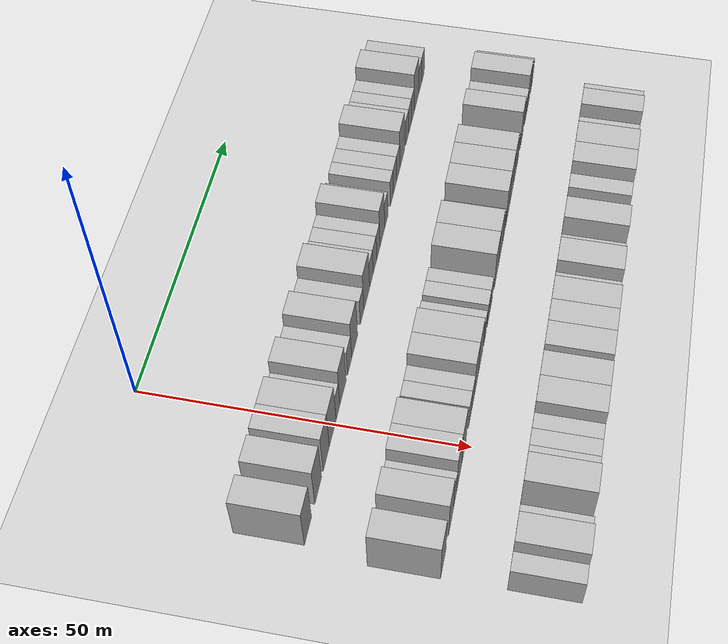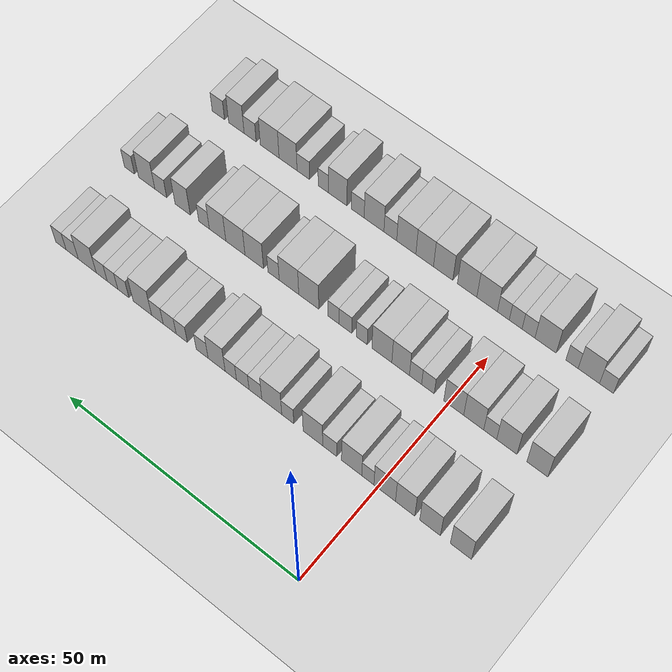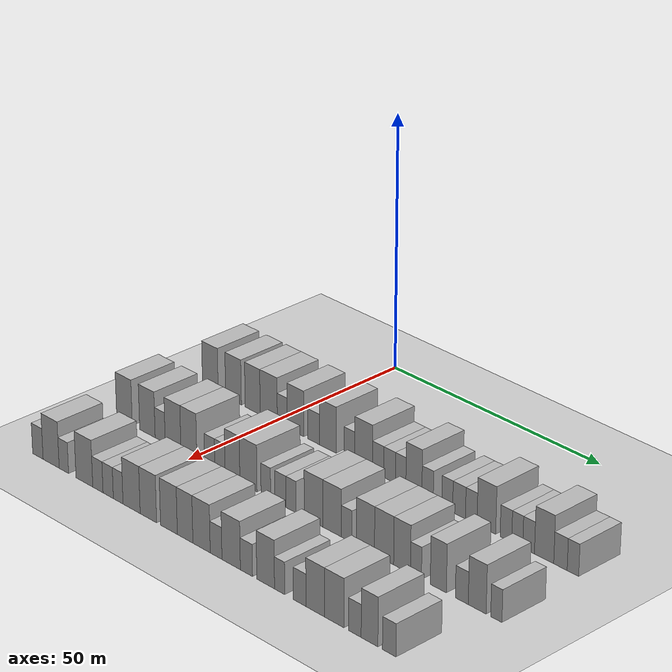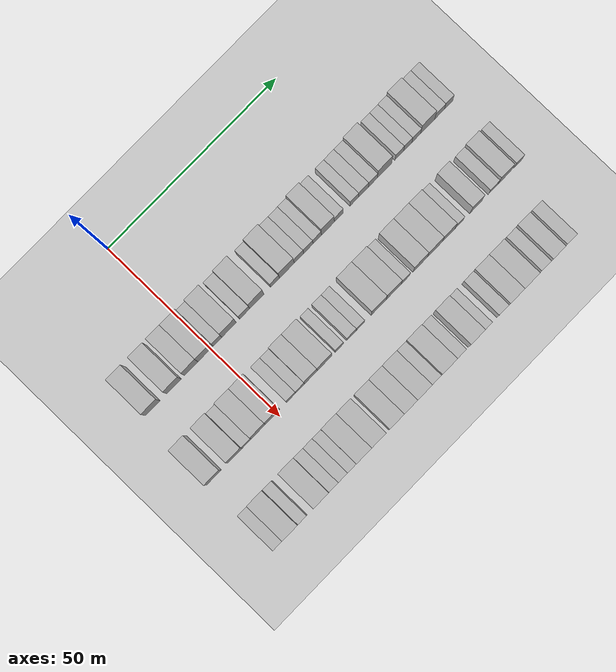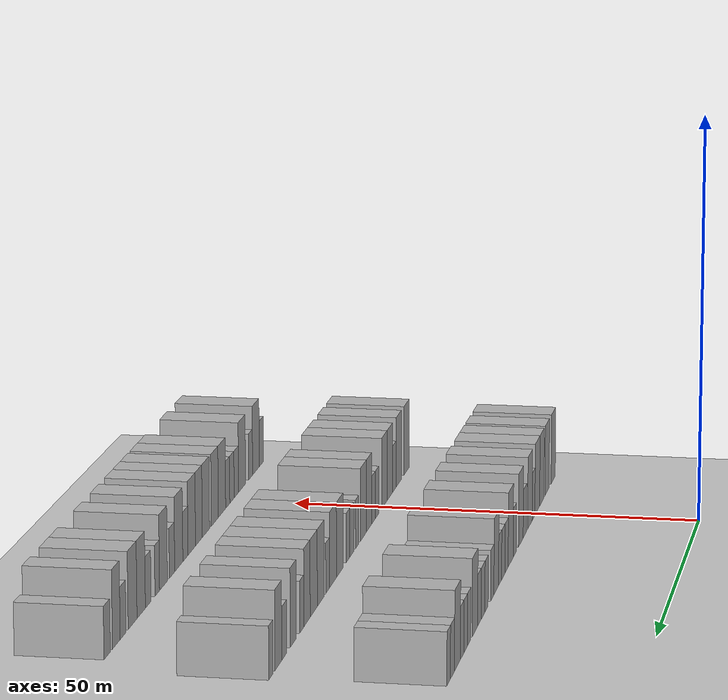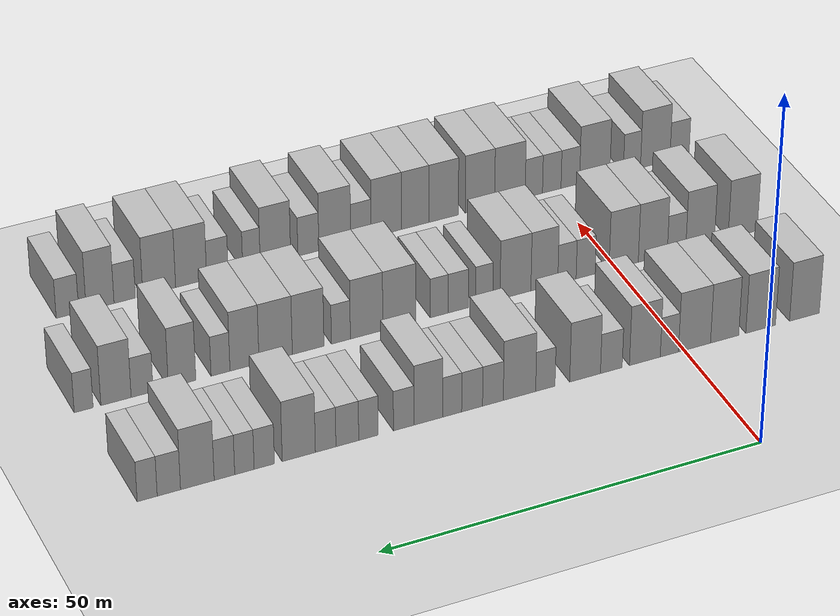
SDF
<sdf version="1.6">
 <world name="default">
  <include><name>ground_plane_1</name><uri>model://HANNAS_ground_plane</uri></include>
  <model name="building_85">
   <static>1</static>
   <pose>25.0000 -16.9718 0 0.000000 0.000000 0.000000</pose>
   <link name="link">
    <pose>0 0 4.50 0 0 0</pose>
    <collision name="collision"><geometry><box><size>10.0000 4.2459 9.0000</size></box></geometry></collision>
    <visual name="visual">
     <cast_shadows>0</cast_shadows>
     <geometry><box><size>10.0000 4.2459 9.0000</size></box></geometry>
     <material>
      <script>
       <uri>model://HANNAS_wall/materials/scripts</uri>
       <uri>model://HANNAS_wall/materials/textures</uri>
       <name>vrc/HANNAS_wall</name>
      </script>
     </material>
    </visual>
   </link>
  </model>
  <model name="building_86">
   <static>1</static>
   <pose>25.0000 -10.7475 0 0.000000 0.000000 0.000000</pose>
   <link name="link">
    <pose>0 0 4.50 0 0 0</pose>
    <collision name="collision"><geometry><box><size>10.0000 4.2026 9.0000</size></box></geometry></collision>
    <visual name="visual">
     <cast_shadows>0</cast_shadows>
     <geometry><box><size>10.0000 4.2026 9.0000</size></box></geometry>
     <material>
      <script>
       <uri>model://HANNAS_wall/materials/scripts</uri>
       <uri>model://HANNAS_wall/materials/textures</uri>
       <name>vrc/HANNAS_wall</name>
      </script>
     </material>
    </visual>
   </link>
  </model>
  <model name="building_87">
   <static>1</static>
   <pose>25.0000 -5.6650 0 0.000000 0.000000 0.000000</pose>
   <link name="link">
    <pose>0 0 4.50 0 0 0</pose>
    <collision name="collision"><geometry><box><size>10.0000 3.9624 9.0000</size></box></geometry></collision>
    <visual name="visual">
     <cast_shadows>0</cast_shadows>
     <geometry><box><size>10.0000 3.9624 9.0000</size></box></geometry>
     <material>
      <script>
       <uri>model://HANNAS_wall/materials/scripts</uri>
       <uri>model://HANNAS_wall/materials/textures</uri>
       <name>vrc/HANNAS_wall</name>
      </script>
     </material>
    </visual>
   </link>
  </model>
  <model name="building_88">
   <static>1</static>
   <pose>25.0000 -1.4471 0 0.000000 0.000000 0.000000</pose>
   <link name="link">
    <pose>0 0 4.50 0 0 0</pose>
    <collision name="collision"><geometry><box><size>10.0000 4.4735 9.0000</size></box></geometry></collision>
    <visual name="visual">
     <cast_shadows>0</cast_shadows>
     <geometry><box><size>10.0000 4.4735 9.0000</size></box></geometry>
     <material>
      <script>
       <uri>model://HANNAS_wall/materials/scripts</uri>
       <uri>model://HANNAS_wall/materials/textures</uri>
       <name>vrc/HANNAS_wall</name>
      </script>
     </material>
    </visual>
   </link>
  </model>
  <model name="building_89">
   <static>1</static>
   <pose>25.0000 2.0580 0 0.000000 0.000000 0.000000</pose>
   <link name="link">
    <pose>0 0 3.00 0 0 0</pose>
    <collision name="collision"><geometry><box><size>10.0000 2.5365 6.0000</size></box></geometry></collision>
    <visual name="visual">
     <cast_shadows>0</cast_shadows>
     <geometry><box><size>10.0000 2.5365 6.0000</size></box></geometry>
     <material>
      <script>
       <uri>model://HANNAS_wall/materials/scripts</uri>
       <uri>model://HANNAS_wall/materials/textures</uri>
       <name>vrc/HANNAS_wall</name>
      </script>
     </material>
    </visual>
   </link>
  </model>
  <model name="building_90">
   <static>1</static>
   <pose>25.0000 5.4576 0 0.000000 0.000000 0.000000</pose>
   <link name="link">
    <pose>0 0 4.50 0 0 0</pose>
    <collision name="collision"><geometry><box><size>10.0000 4.2628 9.0000</size></box></geometry></collision>
    <visual name="visual">
     <cast_shadows>0</cast_shadows>
     <geometry><box><size>10.0000 4.2628 9.0000</size></box></geometry>
     <material>
      <script>
       <uri>model://HANNAS_wall/materials/scripts</uri>
       <uri>model://HANNAS_wall/materials/textures</uri>
       <name>vrc/HANNAS_wall</name>
      </script>
     </material>
    </visual>
   </link>
  </model>
  <model name="building_91">
   <static>1</static>
   <pose>25.0000 10.0822 0 0.000000 0.000000 0.000000</pose>
   <link name="link">
    <pose>0 0 3.00 0 0 0</pose>
    <collision name="collision"><geometry><box><size>10.0000 2.9864 6.0000</size></box></geometry></collision>
    <visual name="visual">
     <cast_shadows>0</cast_shadows>
     <geometry><box><size>10.0000 2.9864 6.0000</size></box></geometry>
     <material>
      <script>
       <uri>model://HANNAS_wall/materials/scripts</uri>
       <uri>model://HANNAS_wall/materials/textures</uri>
       <name>vrc/HANNAS_wall</name>
      </script>
     </material>
    </visual>
   </link>
  </model>
  <model name="building_92">
   <static>1</static>
   <pose>25.0000 13.6766 0 0.000000 0.000000 0.000000</pose>
   <link name="link">
    <pose>0 0 4.50 0 0 0</pose>
    <collision name="collision"><geometry><box><size>10.0000 4.2022 9.0000</size></box></geometry></collision>
    <visual name="visual">
     <cast_shadows>0</cast_shadows>
     <geometry><box><size>10.0000 4.2022 9.0000</size></box></geometry>
     <material>
      <script>
       <uri>model://HANNAS_wall/materials/scripts</uri>
       <uri>model://HANNAS_wall/materials/textures</uri>
       <name>vrc/HANNAS_wall</name>
      </script>
     </material>
    </visual>
   </link>
  </model>
  <model name="building_93">
   <static>1</static>
   <pose>25.0000 19.0886 0 0.000000 0.000000 0.000000</pose>
   <link name="link">
    <pose>0 0 3.00 0 0 0</pose>
    <collision name="collision"><geometry><box><size>10.0000 2.6219 6.0000</size></box></geometry></collision>
    <visual name="visual">
     <cast_shadows>0</cast_shadows>
     <geometry><box><size>10.0000 2.6219 6.0000</size></box></geometry>
     <material>
      <script>
       <uri>model://HANNAS_wall/materials/scripts</uri>
       <uri>model://HANNAS_wall/materials/textures</uri>
       <name>vrc/HANNAS_wall</name>
      </script>
     </material>
    </visual>
   </link>
  </model>
  <model name="building_94">
   <static>1</static>
   <pose>25.0000 22.5845 0 0.000000 0.000000 0.000000</pose>
   <link name="link">
    <pose>0 0 4.50 0 0 0</pose>
    <collision name="collision"><geometry><box><size>10.0000 4.3699 9.0000</size></box></geometry></collision>
    <visual name="visual">
     <cast_shadows>0</cast_shadows>
     <geometry><box><size>10.0000 4.3699 9.0000</size></box></geometry>
     <material>
      <script>
       <uri>model://HANNAS_wall/materials/scripts</uri>
       <uri>model://HANNAS_wall/materials/textures</uri>
       <name>vrc/HANNAS_wall</name>
      </script>
     </material>
    </visual>
   </link>
  </model>
  <model name="building_95">
   <static>1</static>
   <pose>25.0000 26.1605 0 0.000000 0.000000 0.000000</pose>
   <link name="link">
    <pose>0 0 3.00 0 0 0</pose>
    <collision name="collision"><geometry><box><size>10.0000 2.7820 6.0000</size></box></geometry></collision>
    <visual name="visual">
     <cast_shadows>0</cast_shadows>
     <geometry><box><size>10.0000 2.7820 6.0000</size></box></geometry>
     <material>
      <script>
       <uri>model://HANNAS_wall/materials/scripts</uri>
       <uri>model://HANNAS_wall/materials/textures</uri>
       <name>vrc/HANNAS_wall</name>
      </script>
     </material>
    </visual>
   </link>
  </model>
  <model name="building_96">
   <static>1</static>
   <pose>25.0000 28.9496 0 0.000000 0.000000 0.000000</pose>
   <link name="link">
    <pose>0 0 3.00 0 0 0</pose>
    <collision name="collision"><geometry><box><size>10.0000 2.7963 6.0000</size></box></geometry></collision>
    <visual name="visual">
     <cast_shadows>0</cast_shadows>
     <geometry><box><size>10.0000 2.7963 6.0000</size></box></geometry>
     <material>
      <script>
       <uri>model://HANNAS_wall/materials/scripts</uri>
       <uri>model://HANNAS_wall/materials/textures</uri>
       <name>vrc/HANNAS_wall</name>
      </script>
     </material>
    </visual>
   </link>
  </model>
  <model name="building_97">
   <static>1</static>
   <pose>25.0000 31.6066 0 0.000000 0.000000 0.000000</pose>
   <link name="link">
    <pose>0 0 3.00 0 0 0</pose>
    <collision name="collision"><geometry><box><size>10.0000 2.5177 6.0000</size></box></geometry></collision>
    <visual name="visual">
     <cast_shadows>0</cast_shadows>
     <geometry><box><size>10.0000 2.5177 6.0000</size></box></geometry>
     <material>
      <script>
       <uri>model://HANNAS_wall/materials/scripts</uri>
       <uri>model://HANNAS_wall/materials/textures</uri>
       <name>vrc/HANNAS_wall</name>
      </script>
     </material>
    </visual>
   </link>
  </model>
  <model name="building_98">
   <static>1</static>
   <pose>25.0000 34.7796 0 0.000000 0.000000 0.000000</pose>
   <link name="link">
    <pose>0 0 4.50 0 0 0</pose>
    <collision name="collision"><geometry><box><size>10.0000 3.8283 9.0000</size></box></geometry></collision>
    <visual name="visual">
     <cast_shadows>0</cast_shadows>
     <geometry><box><size>10.0000 3.8283 9.0000</size></box></geometry>
     <material>
      <script>
       <uri>model://HANNAS_wall/materials/scripts</uri>
       <uri>model://HANNAS_wall/materials/textures</uri>
       <name>vrc/HANNAS_wall</name>
      </script>
     </material>
    </visual>
   </link>
  </model>
  <model name="building_99">
   <static>1</static>
   <pose>25.0000 38.0408 0 0.000000 0.000000 0.000000</pose>
   <link name="link">
    <pose>0 0 3.00 0 0 0</pose>
    <collision name="collision"><geometry><box><size>10.0000 2.6940 6.0000</size></box></geometry></collision>
    <visual name="visual">
     <cast_shadows>0</cast_shadows>
     <geometry><box><size>10.0000 2.6940 6.0000</size></box></geometry>
     <material>
      <script>
       <uri>model://HANNAS_wall/materials/scripts</uri>
       <uri>model://HANNAS_wall/materials/textures</uri>
       <name>vrc/HANNAS_wall</name>
      </script>
     </material>
    </visual>
   </link>
  </model>
  <model name="building_100">
   <static>1</static>
   <pose>25.0000 42.6638 0 0.000000 0.000000 0.000000</pose>
   <link name="link">
    <pose>0 0 3.00 0 0 0</pose>
    <collision name="collision"><geometry><box><size>10.0000 2.5520 6.0000</size></box></geometry></collision>
    <visual name="visual">
     <cast_shadows>0</cast_shadows>
     <geometry><box><size>10.0000 2.5520 6.0000</size></box></geometry>
     <material>
      <script>
       <uri>model://HANNAS_wall/materials/scripts</uri>
       <uri>model://HANNAS_wall/materials/textures</uri>
       <name>vrc/HANNAS_wall</name>
      </script>
     </material>
    </visual>
   </link>
  </model>
  <model name="building_101">
   <static>1</static>
   <pose>25.0000 45.4271 0 0.000000 0.000000 0.000000</pose>
   <link name="link">
    <pose>0 0 3.00 0 0 0</pose>
    <collision name="collision"><geometry><box><size>10.0000 2.9746 6.0000</size></box></geometry></collision>
    <visual name="visual">
     <cast_shadows>0</cast_shadows>
     <geometry><box><size>10.0000 2.9746 6.0000</size></box></geometry>
     <material>
      <script>
       <uri>model://HANNAS_wall/materials/scripts</uri>
       <uri>model://HANNAS_wall/materials/textures</uri>
       <name>vrc/HANNAS_wall</name>
      </script>
     </material>
    </visual>
   </link>
  </model>
  <model name="building_102">
   <static>1</static>
   <pose>25.0000 48.2496 0 0.000000 0.000000 0.000000</pose>
   <link name="link">
    <pose>0 0 3.00 0 0 0</pose>
    <collision name="collision"><geometry><box><size>10.0000 2.6703 6.0000</size></box></geometry></collision>
    <visual name="visual">
     <cast_shadows>0</cast_shadows>
     <geometry><box><size>10.0000 2.6703 6.0000</size></box></geometry>
     <material>
      <script>
       <uri>model://HANNAS_wall/materials/scripts</uri>
       <uri>model://HANNAS_wall/materials/textures</uri>
       <name>vrc/HANNAS_wall</name>
      </script>
     </material>
    </visual>
   </link>
  </model>
  <model name="building_103">
   <static>1</static>
   <pose>25.0000 51.7257 0 0.000000 0.000000 0.000000</pose>
   <link name="link">
    <pose>0 0 4.50 0 0 0</pose>
    <collision name="collision"><geometry><box><size>10.0000 4.2819 9.0000</size></box></geometry></collision>
    <visual name="visual">
     <cast_shadows>0</cast_shadows>
     <geometry><box><size>10.0000 4.2819 9.0000</size></box></geometry>
     <material>
      <script>
       <uri>model://HANNAS_wall/materials/scripts</uri>
       <uri>model://HANNAS_wall/materials/textures</uri>
       <name>vrc/HANNAS_wall</name>
      </script>
     </material>
    </visual>
   </link>
  </model>
  <model name="building_104">
   <static>1</static>
   <pose>25.0000 56.1713 0 0.000000 0.000000 0.000000</pose>
   <link name="link">
    <pose>0 0 3.00 0 0 0</pose>
    <collision name="collision"><geometry><box><size>10.0000 2.6092 6.0000</size></box></geometry></collision>
    <visual name="visual">
     <cast_shadows>0</cast_shadows>
     <geometry><box><size>10.0000 2.6092 6.0000</size></box></geometry>
     <material>
      <script>
       <uri>model://HANNAS_wall/materials/scripts</uri>
       <uri>model://HANNAS_wall/materials/textures</uri>
       <name>vrc/HANNAS_wall</name>
      </script>
     </material>
    </visual>
   </link>
  </model>
  <model name="building_105">
   <static>1</static>
   <pose>25.0000 58.7191 0 0.000000 0.000000 0.000000</pose>
   <link name="link">
    <pose>0 0 3.00 0 0 0</pose>
    <collision name="collision"><geometry><box><size>10.0000 2.4866 6.0000</size></box></geometry></collision>
    <visual name="visual">
     <cast_shadows>0</cast_shadows>
     <geometry><box><size>10.0000 2.4866 6.0000</size></box></geometry>
     <material>
      <script>
       <uri>model://HANNAS_wall/materials/scripts</uri>
       <uri>model://HANNAS_wall/materials/textures</uri>
       <name>vrc/HANNAS_wall</name>
      </script>
     </material>
    </visual>
   </link>
  </model>
  <model name="building_106">
   <static>1</static>
   <pose>25.0000 61.2697 0 0.000000 0.000000 0.000000</pose>
   <link name="link">
    <pose>0 0 3.00 0 0 0</pose>
    <collision name="collision"><geometry><box><size>10.0000 2.6146 6.0000</size></box></geometry></collision>
    <visual name="visual">
     <cast_shadows>0</cast_shadows>
     <geometry><box><size>10.0000 2.6146 6.0000</size></box></geometry>
     <material>
      <script>
       <uri>model://HANNAS_wall/materials/scripts</uri>
       <uri>model://HANNAS_wall/materials/textures</uri>
       <name>vrc/HANNAS_wall</name>
      </script>
     </material>
    </visual>
   </link>
  </model>
  <model name="building_107">
   <static>1</static>
   <pose>25.0000 64.7110 0 0.000000 0.000000 0.000000</pose>
   <link name="link">
    <pose>0 0 4.50 0 0 0</pose>
    <collision name="collision"><geometry><box><size>10.0000 4.2680 9.0000</size></box></geometry></collision>
    <visual name="visual">
     <cast_shadows>0</cast_shadows>
     <geometry><box><size>10.0000 4.2680 9.0000</size></box></geometry>
     <material>
      <script>
       <uri>model://HANNAS_wall/materials/scripts</uri>
       <uri>model://HANNAS_wall/materials/textures</uri>
       <name>vrc/HANNAS_wall</name>
      </script>
     </material>
    </visual>
   </link>
  </model>
  <model name="building_108">
   <static>1</static>
   <pose>25.0000 68.3147 0 0.000000 0.000000 0.000000</pose>
   <link name="link">
    <pose>0 0 3.00 0 0 0</pose>
    <collision name="collision"><geometry><box><size>10.0000 2.9395 6.0000</size></box></geometry></collision>
    <visual name="visual">
     <cast_shadows>0</cast_shadows>
     <geometry><box><size>10.0000 2.9395 6.0000</size></box></geometry>
     <material>
      <script>
       <uri>model://HANNAS_wall/materials/scripts</uri>
       <uri>model://HANNAS_wall/materials/textures</uri>
       <name>vrc/HANNAS_wall</name>
      </script>
     </material>
    </visual>
   </link>
  </model>
  <model name="building_109">
   <static>1</static>
   <pose>25.0000 71.0429 0 0.000000 0.000000 0.000000</pose>
   <link name="link">
    <pose>0 0 3.00 0 0 0</pose>
    <collision name="collision"><geometry><box><size>10.0000 2.5168 6.0000</size></box></geometry></collision>
    <visual name="visual">
     <cast_shadows>0</cast_shadows>
     <geometry><box><size>10.0000 2.5168 6.0000</size></box></geometry>
     <material>
      <script>
       <uri>model://HANNAS_wall/materials/scripts</uri>
       <uri>model://HANNAS_wall/materials/textures</uri>
       <name>vrc/HANNAS_wall</name>
      </script>
     </material>
    </visual>
   </link>
  </model>
  <model name="building_255">
   <static>1</static>
   <pose>44.0000 -18.3173 0 0.000000 0.000000 0.000000</pose>
   <link name="link">
    <pose>0 0 4.50 0 0 0</pose>
    <collision name="collision"><geometry><box><size>10.0000 4.2579 9.0000</size></box></geometry></collision>
    <visual name="visual">
     <cast_shadows>0</cast_shadows>
     <geometry><box><size>10.0000 4.2579 9.0000</size></box></geometry>
     <material>
      <script>
       <uri>model://HANNAS_wall/materials/scripts</uri>
       <uri>model://HANNAS_wall/materials/textures</uri>
       <name>vrc/HANNAS_wall</name>
      </script>
     </material>
    </visual>
   </link>
  </model>
  <model name="building_256">
   <static>1</static>
   <pose>44.0000 -12.1094 0 0.000000 0.000000 0.000000</pose>
   <link name="link">
    <pose>0 0 4.50 0 0 0</pose>
    <collision name="collision"><geometry><box><size>10.0000 4.1579 9.0000</size></box></geometry></collision>
    <visual name="visual">
     <cast_shadows>0</cast_shadows>
     <geometry><box><size>10.0000 4.1579 9.0000</size></box></geometry>
     <material>
      <script>
       <uri>model://HANNAS_wall/materials/scripts</uri>
       <uri>model://HANNAS_wall/materials/textures</uri>
       <name>vrc/HANNAS_wall</name>
      </script>
     </material>
    </visual>
   </link>
  </model>
  <model name="building_257">
   <static>1</static>
   <pose>44.0000 -8.6927 0 0.000000 0.000000 0.000000</pose>
   <link name="link">
    <pose>0 0 3.00 0 0 0</pose>
    <collision name="collision"><geometry><box><size>10.0000 2.6756 6.0000</size></box></geometry></collision>
    <visual name="visual">
     <cast_shadows>0</cast_shadows>
     <geometry><box><size>10.0000 2.6756 6.0000</size></box></geometry>
     <material>
      <script>
       <uri>model://HANNAS_wall/materials/scripts</uri>
       <uri>model://HANNAS_wall/materials/textures</uri>
       <name>vrc/HANNAS_wall</name>
      </script>
     </material>
    </visual>
   </link>
  </model>
  <model name="building_258">
   <static>1</static>
   <pose>44.0000 -5.2742 0 0.000000 0.000000 0.000000</pose>
   <link name="link">
    <pose>0 0 4.50 0 0 0</pose>
    <collision name="collision"><geometry><box><size>10.0000 4.1613 9.0000</size></box></geometry></collision>
    <visual name="visual">
     <cast_shadows>0</cast_shadows>
     <geometry><box><size>10.0000 4.1613 9.0000</size></box></geometry>
     <material>
      <script>
       <uri>model://HANNAS_wall/materials/scripts</uri>
       <uri>model://HANNAS_wall/materials/textures</uri>
       <name>vrc/HANNAS_wall</name>
      </script>
     </material>
    </visual>
   </link>
  </model>
  <model name="building_259">
   <static>1</static>
   <pose>44.0000 -1.1055 0 0.000000 0.000000 0.000000</pose>
   <link name="link">
    <pose>0 0 4.50 0 0 0</pose>
    <collision name="collision"><geometry><box><size>10.0000 4.1761 9.0000</size></box></geometry></collision>
    <visual name="visual">
     <cast_shadows>0</cast_shadows>
     <geometry><box><size>10.0000 4.1761 9.0000</size></box></geometry>
     <material>
      <script>
       <uri>model://HANNAS_wall/materials/scripts</uri>
       <uri>model://HANNAS_wall/materials/textures</uri>
       <name>vrc/HANNAS_wall</name>
      </script>
     </material>
    </visual>
   </link>
  </model>
  <model name="building_260">
   <static>1</static>
   <pose>44.0000 4.3230 0 0.000000 0.000000 0.000000</pose>
   <link name="link">
    <pose>0 0 3.00 0 0 0</pose>
    <collision name="collision"><geometry><box><size>10.0000 2.6811 6.0000</size></box></geometry></collision>
    <visual name="visual">
     <cast_shadows>0</cast_shadows>
     <geometry><box><size>10.0000 2.6811 6.0000</size></box></geometry>
     <material>
      <script>
       <uri>model://HANNAS_wall/materials/scripts</uri>
       <uri>model://HANNAS_wall/materials/textures</uri>
       <name>vrc/HANNAS_wall</name>
      </script>
     </material>
    </visual>
   </link>
  </model>
  <model name="building_261">
   <static>1</static>
   <pose>44.0000 6.9603 0 0.000000 0.000000 0.000000</pose>
   <link name="link">
    <pose>0 0 3.00 0 0 0</pose>
    <collision name="collision"><geometry><box><size>10.0000 2.5935 6.0000</size></box></geometry></collision>
    <visual name="visual">
     <cast_shadows>0</cast_shadows>
     <geometry><box><size>10.0000 2.5935 6.0000</size></box></geometry>
     <material>
      <script>
       <uri>model://HANNAS_wall/materials/scripts</uri>
       <uri>model://HANNAS_wall/materials/textures</uri>
       <name>vrc/HANNAS_wall</name>
      </script>
     </material>
    </visual>
   </link>
  </model>
  <model name="building_262">
   <static>1</static>
   <pose>44.0000 10.1477 0 0.000000 0.000000 0.000000</pose>
   <link name="link">
    <pose>0 0 4.50 0 0 0</pose>
    <collision name="collision"><geometry><box><size>10.0000 3.7812 9.0000</size></box></geometry></collision>
    <visual name="visual">
     <cast_shadows>0</cast_shadows>
     <geometry><box><size>10.0000 3.7812 9.0000</size></box></geometry>
     <material>
      <script>
       <uri>model://HANNAS_wall/materials/scripts</uri>
       <uri>model://HANNAS_wall/materials/textures</uri>
       <name>vrc/HANNAS_wall</name>
      </script>
     </material>
    </visual>
   </link>
  </model>
  <model name="building_263">
   <static>1</static>
   <pose>44.0000 14.1966 0 0.000000 0.000000 0.000000</pose>
   <link name="link">
    <pose>0 0 4.50 0 0 0</pose>
    <collision name="collision"><geometry><box><size>10.0000 4.3167 9.0000</size></box></geometry></collision>
    <visual name="visual">
     <cast_shadows>0</cast_shadows>
     <geometry><box><size>10.0000 4.3167 9.0000</size></box></geometry>
     <material>
      <script>
       <uri>model://HANNAS_wall/materials/scripts</uri>
       <uri>model://HANNAS_wall/materials/textures</uri>
       <name>vrc/HANNAS_wall</name>
      </script>
     </material>
    </visual>
   </link>
  </model>
  <model name="building_264">
   <static>1</static>
   <pose>44.0000 18.5567 0 0.000000 0.000000 0.000000</pose>
   <link name="link">
    <pose>0 0 3.00 0 0 0</pose>
    <collision name="collision"><geometry><box><size>10.0000 2.4034 6.0000</size></box></geometry></collision>
    <visual name="visual">
     <cast_shadows>0</cast_shadows>
     <geometry><box><size>10.0000 2.4034 6.0000</size></box></geometry>
     <material>
      <script>
       <uri>model://HANNAS_wall/materials/scripts</uri>
       <uri>model://HANNAS_wall/materials/textures</uri>
       <name>vrc/HANNAS_wall</name>
      </script>
     </material>
    </visual>
   </link>
  </model>
  <model name="building_265">
   <static>1</static>
   <pose>44.0000 22.1591 0 0.000000 0.000000 0.000000</pose>
   <link name="link">
    <pose>0 0 3.00 0 0 0</pose>
    <collision name="collision"><geometry><box><size>10.0000 2.8014 6.0000</size></box></geometry></collision>
    <visual name="visual">
     <cast_shadows>0</cast_shadows>
     <geometry><box><size>10.0000 2.8014 6.0000</size></box></geometry>
     <material>
      <script>
       <uri>model://HANNAS_wall/materials/scripts</uri>
       <uri>model://HANNAS_wall/materials/textures</uri>
       <name>vrc/HANNAS_wall</name>
      </script>
     </material>
    </visual>
   </link>
  </model>
  <model name="building_266">
   <static>1</static>
   <pose>44.0000 24.7898 0 0.000000 0.000000 0.000000</pose>
   <link name="link">
    <pose>0 0 3.00 0 0 0</pose>
    <collision name="collision"><geometry><box><size>10.0000 2.4600 6.0000</size></box></geometry></collision>
    <visual name="visual">
     <cast_shadows>0</cast_shadows>
     <geometry><box><size>10.0000 2.4600 6.0000</size></box></geometry>
     <material>
      <script>
       <uri>model://HANNAS_wall/materials/scripts</uri>
       <uri>model://HANNAS_wall/materials/textures</uri>
       <name>vrc/HANNAS_wall</name>
      </script>
     </material>
    </visual>
   </link>
  </model>
  <model name="building_267">
   <static>1</static>
   <pose>44.0000 30.2677 0 0.000000 0.000000 0.000000</pose>
   <link name="link">
    <pose>0 0 4.50 0 0 0</pose>
    <collision name="collision"><geometry><box><size>10.0000 4.4958 9.0000</size></box></geometry></collision>
    <visual name="visual">
     <cast_shadows>0</cast_shadows>
     <geometry><box><size>10.0000 4.4958 9.0000</size></box></geometry>
     <material>
      <script>
       <uri>model://HANNAS_wall/materials/scripts</uri>
       <uri>model://HANNAS_wall/materials/textures</uri>
       <name>vrc/HANNAS_wall</name>
      </script>
     </material>
    </visual>
   </link>
  </model>
  <model name="building_268">
   <static>1</static>
   <pose>44.0000 34.7207 0 0.000000 0.000000 0.000000</pose>
   <link name="link">
    <pose>0 0 4.50 0 0 0</pose>
    <collision name="collision"><geometry><box><size>10.0000 4.4102 9.0000</size></box></geometry></collision>
    <visual name="visual">
     <cast_shadows>0</cast_shadows>
     <geometry><box><size>10.0000 4.4102 9.0000</size></box></geometry>
     <material>
      <script>
       <uri>model://HANNAS_wall/materials/scripts</uri>
       <uri>model://HANNAS_wall/materials/textures</uri>
       <name>vrc/HANNAS_wall</name>
      </script>
     </material>
    </visual>
   </link>
  </model>
  <model name="building_269">
   <static>1</static>
   <pose>44.0000 38.2073 0 0.000000 0.000000 0.000000</pose>
   <link name="link">
    <pose>0 0 3.00 0 0 0</pose>
    <collision name="collision"><geometry><box><size>10.0000 2.5629 6.0000</size></box></geometry></collision>
    <visual name="visual">
     <cast_shadows>0</cast_shadows>
     <geometry><box><size>10.0000 2.5629 6.0000</size></box></geometry>
     <material>
      <script>
       <uri>model://HANNAS_wall/materials/scripts</uri>
       <uri>model://HANNAS_wall/materials/textures</uri>
       <name>vrc/HANNAS_wall</name>
      </script>
     </material>
    </visual>
   </link>
  </model>
  <model name="building_270">
   <static>1</static>
   <pose>44.0000 42.6159 0 0.000000 0.000000 0.000000</pose>
   <link name="link">
    <pose>0 0 4.50 0 0 0</pose>
    <collision name="collision"><geometry><box><size>10.0000 4.2542 9.0000</size></box></geometry></collision>
    <visual name="visual">
     <cast_shadows>0</cast_shadows>
     <geometry><box><size>10.0000 4.2542 9.0000</size></box></geometry>
     <material>
      <script>
       <uri>model://HANNAS_wall/materials/scripts</uri>
       <uri>model://HANNAS_wall/materials/textures</uri>
       <name>vrc/HANNAS_wall</name>
      </script>
     </material>
    </visual>
   </link>
  </model>
  <model name="building_271">
   <static>1</static>
   <pose>44.0000 46.9661 0 0.000000 0.000000 0.000000</pose>
   <link name="link">
    <pose>0 0 4.50 0 0 0</pose>
    <collision name="collision"><geometry><box><size>10.0000 4.4463 9.0000</size></box></geometry></collision>
    <visual name="visual">
     <cast_shadows>0</cast_shadows>
     <geometry><box><size>10.0000 4.4463 9.0000</size></box></geometry>
     <material>
      <script>
       <uri>model://HANNAS_wall/materials/scripts</uri>
       <uri>model://HANNAS_wall/materials/textures</uri>
       <name>vrc/HANNAS_wall</name>
      </script>
     </material>
    </visual>
   </link>
  </model>
  <model name="building_272">
   <static>1</static>
   <pose>44.0000 51.1177 0 0.000000 0.000000 0.000000</pose>
   <link name="link">
    <pose>0 0 4.50 0 0 0</pose>
    <collision name="collision"><geometry><box><size>10.0000 3.8569 9.0000</size></box></geometry></collision>
    <visual name="visual">
     <cast_shadows>0</cast_shadows>
     <geometry><box><size>10.0000 3.8569 9.0000</size></box></geometry>
     <material>
      <script>
       <uri>model://HANNAS_wall/materials/scripts</uri>
       <uri>model://HANNAS_wall/materials/textures</uri>
       <name>vrc/HANNAS_wall</name>
      </script>
     </material>
    </visual>
   </link>
  </model>
  <model name="building_273">
   <static>1</static>
   <pose>44.0000 54.2949 0 0.000000 0.000000 0.000000</pose>
   <link name="link">
    <pose>0 0 3.00 0 0 0</pose>
    <collision name="collision"><geometry><box><size>10.0000 2.4976 6.0000</size></box></geometry></collision>
    <visual name="visual">
     <cast_shadows>0</cast_shadows>
     <geometry><box><size>10.0000 2.4976 6.0000</size></box></geometry>
     <material>
      <script>
       <uri>model://HANNAS_wall/materials/scripts</uri>
       <uri>model://HANNAS_wall/materials/textures</uri>
       <name>vrc/HANNAS_wall</name>
      </script>
     </material>
    </visual>
   </link>
  </model>
  <model name="building_274">
   <static>1</static>
   <pose>44.0000 59.3465 0 0.000000 0.000000 0.000000</pose>
   <link name="link">
    <pose>0 0 4.50 0 0 0</pose>
    <collision name="collision"><geometry><box><size>10.0000 3.6056 9.0000</size></box></geometry></collision>
    <visual name="visual">
     <cast_shadows>0</cast_shadows>
     <geometry><box><size>10.0000 3.6056 9.0000</size></box></geometry>
     <material>
      <script>
       <uri>model://HANNAS_wall/materials/scripts</uri>
       <uri>model://HANNAS_wall/materials/textures</uri>
       <name>vrc/HANNAS_wall</name>
      </script>
     </material>
    </visual>
   </link>
  </model>
  <model name="building_275">
   <static>1</static>
   <pose>44.0000 64.5772 0 0.000000 0.000000 0.000000</pose>
   <link name="link">
    <pose>0 0 3.00 0 0 0</pose>
    <collision name="collision"><geometry><box><size>10.0000 2.8558 6.0000</size></box></geometry></collision>
    <visual name="visual">
     <cast_shadows>0</cast_shadows>
     <geometry><box><size>10.0000 2.8558 6.0000</size></box></geometry>
     <material>
      <script>
       <uri>model://HANNAS_wall/materials/scripts</uri>
       <uri>model://HANNAS_wall/materials/textures</uri>
       <name>vrc/HANNAS_wall</name>
      </script>
     </material>
    </visual>
   </link>
  </model>
  <model name="building_276">
   <static>1</static>
   <pose>44.0000 67.9653 0 0.000000 0.000000 0.000000</pose>
   <link name="link">
    <pose>0 0 4.50 0 0 0</pose>
    <collision name="collision"><geometry><box><size>10.0000 3.9206 9.0000</size></box></geometry></collision>
    <visual name="visual">
     <cast_shadows>0</cast_shadows>
     <geometry><box><size>10.0000 3.9206 9.0000</size></box></geometry>
     <material>
      <script>
       <uri>model://HANNAS_wall/materials/scripts</uri>
       <uri>model://HANNAS_wall/materials/textures</uri>
       <name>vrc/HANNAS_wall</name>
      </script>
     </material>
    </visual>
   </link>
  </model>
  <model name="building_277">
   <static>1</static>
   <pose>44.0000 72.1450 0 0.000000 0.000000 0.000000</pose>
   <link name="link">
    <pose>0 0 3.00 0 0 0</pose>
    <collision name="collision"><geometry><box><size>10.0000 2.4387 6.0000</size></box></geometry></collision>
    <visual name="visual">
     <cast_shadows>0</cast_shadows>
     <geometry><box><size>10.0000 2.4387 6.0000</size></box></geometry>
     <material>
      <script>
       <uri>model://HANNAS_wall/materials/scripts</uri>
       <uri>model://HANNAS_wall/materials/textures</uri>
       <name>vrc/HANNAS_wall</name>
      </script>
     </material>
    </visual>
   </link>
  </model>
  <model name="building_432">
   <static>1</static>
   <pose>63.0000 -18.8980 0 0.000000 0.000000 0.000000</pose>
   <link name="link">
    <pose>0 0 3.00 0 0 0</pose>
    <collision name="collision"><geometry><box><size>10.0000 2.8540 6.0000</size></box></geometry></collision>
    <visual name="visual">
     <cast_shadows>0</cast_shadows>
     <geometry><box><size>10.0000 2.8540 6.0000</size></box></geometry>
     <material>
      <script>
       <uri>model://HANNAS_wall/materials/scripts</uri>
       <uri>model://HANNAS_wall/materials/textures</uri>
       <name>vrc/HANNAS_wall</name>
      </script>
     </material>
    </visual>
   </link>
  </model>
  <model name="building_433">
   <static>1</static>
   <pose>63.0000 -15.2780 0 0.000000 0.000000 0.000000</pose>
   <link name="link">
    <pose>0 0 4.50 0 0 0</pose>
    <collision name="collision"><geometry><box><size>10.0000 4.3860 9.0000</size></box></geometry></collision>
    <visual name="visual">
     <cast_shadows>0</cast_shadows>
     <geometry><box><size>10.0000 4.3860 9.0000</size></box></geometry>
     <material>
      <script>
       <uri>model://HANNAS_wall/materials/scripts</uri>
       <uri>model://HANNAS_wall/materials/textures</uri>
       <name>vrc/HANNAS_wall</name>
      </script>
     </material>
    </visual>
   </link>
  </model>
  <model name="building_434">
   <static>1</static>
   <pose>63.0000 -11.8132 0 0.000000 0.000000 0.000000</pose>
   <link name="link">
    <pose>0 0 3.00 0 0 0</pose>
    <collision name="collision"><geometry><box><size>10.0000 2.5437 6.0000</size></box></geometry></collision>
    <visual name="visual">
     <cast_shadows>0</cast_shadows>
     <geometry><box><size>10.0000 2.5437 6.0000</size></box></geometry>
     <material>
      <script>
       <uri>model://HANNAS_wall/materials/scripts</uri>
       <uri>model://HANNAS_wall/materials/textures</uri>
       <name>vrc/HANNAS_wall</name>
      </script>
     </material>
    </visual>
   </link>
  </model>
  <model name="building_435">
   <static>1</static>
   <pose>63.0000 -6.3114 0 0.000000 0.000000 0.000000</pose>
   <link name="link">
    <pose>0 0 4.50 0 0 0</pose>
    <collision name="collision"><geometry><box><size>10.0000 4.4598 9.0000</size></box></geometry></collision>
    <visual name="visual">
     <cast_shadows>0</cast_shadows>
     <geometry><box><size>10.0000 4.4598 9.0000</size></box></geometry>
     <material>
      <script>
       <uri>model://HANNAS_wall/materials/scripts</uri>
       <uri>model://HANNAS_wall/materials/textures</uri>
       <name>vrc/HANNAS_wall</name>
      </script>
     </material>
    </visual>
   </link>
  </model>
  <model name="building_436">
   <static>1</static>
   <pose>63.0000 -2.7238 0 0.000000 0.000000 0.000000</pose>
   <link name="link">
    <pose>0 0 3.00 0 0 0</pose>
    <collision name="collision"><geometry><box><size>10.0000 2.7154 6.0000</size></box></geometry></collision>
    <visual name="visual">
     <cast_shadows>0</cast_shadows>
     <geometry><box><size>10.0000 2.7154 6.0000</size></box></geometry>
     <material>
      <script>
       <uri>model://HANNAS_wall/materials/scripts</uri>
       <uri>model://HANNAS_wall/materials/textures</uri>
       <name>vrc/HANNAS_wall</name>
      </script>
     </material>
    </visual>
   </link>
  </model>
  <model name="building_437">
   <static>1</static>
   <pose>63.0000 -0.0134 0 0.000000 0.000000 0.000000</pose>
   <link name="link">
    <pose>0 0 3.00 0 0 0</pose>
    <collision name="collision"><geometry><box><size>10.0000 2.7053 6.0000</size></box></geometry></collision>
    <visual name="visual">
     <cast_shadows>0</cast_shadows>
     <geometry><box><size>10.0000 2.7053 6.0000</size></box></geometry>
     <material>
      <script>
       <uri>model://HANNAS_wall/materials/scripts</uri>
       <uri>model://HANNAS_wall/materials/textures</uri>
       <name>vrc/HANNAS_wall</name>
      </script>
     </material>
    </visual>
   </link>
  </model>
  <model name="building_438">
   <static>1</static>
   <pose>63.0000 2.6024 0 0.000000 0.000000 0.000000</pose>
   <link name="link">
    <pose>0 0 3.00 0 0 0</pose>
    <collision name="collision"><geometry><box><size>10.0000 2.5265 6.0000</size></box></geometry></collision>
    <visual name="visual">
     <cast_shadows>0</cast_shadows>
     <geometry><box><size>10.0000 2.5265 6.0000</size></box></geometry>
     <material>
      <script>
       <uri>model://HANNAS_wall/materials/scripts</uri>
       <uri>model://HANNAS_wall/materials/textures</uri>
       <name>vrc/HANNAS_wall</name>
      </script>
     </material>
    </visual>
   </link>
  </model>
  <model name="building_439">
   <static>1</static>
   <pose>63.0000 6.0796 0 0.000000 0.000000 0.000000</pose>
   <link name="link">
    <pose>0 0 4.50 0 0 0</pose>
    <collision name="collision"><geometry><box><size>10.0000 4.4278 9.0000</size></box></geometry></collision>
    <visual name="visual">
     <cast_shadows>0</cast_shadows>
     <geometry><box><size>10.0000 4.4278 9.0000</size></box></geometry>
     <material>
      <script>
       <uri>model://HANNAS_wall/materials/scripts</uri>
       <uri>model://HANNAS_wall/materials/textures</uri>
       <name>vrc/HANNAS_wall</name>
      </script>
     </material>
    </visual>
   </link>
  </model>
  <model name="building_440">
   <static>1</static>
   <pose>63.0000 10.3981 0 0.000000 0.000000 0.000000</pose>
   <link name="link">
    <pose>0 0 4.50 0 0 0</pose>
    <collision name="collision"><geometry><box><size>10.0000 4.2091 9.0000</size></box></geometry></collision>
    <visual name="visual">
     <cast_shadows>0</cast_shadows>
     <geometry><box><size>10.0000 4.2091 9.0000</size></box></geometry>
     <material>
      <script>
       <uri>model://HANNAS_wall/materials/scripts</uri>
       <uri>model://HANNAS_wall/materials/textures</uri>
       <name>vrc/HANNAS_wall</name>
      </script>
     </material>
    </visual>
   </link>
  </model>
  <model name="building_441">
   <static>1</static>
   <pose>63.0000 15.6186 0 0.000000 0.000000 0.000000</pose>
   <link name="link">
    <pose>0 0 4.50 0 0 0</pose>
    <collision name="collision"><geometry><box><size>10.0000 4.2320 9.0000</size></box></geometry></collision>
    <visual name="visual">
     <cast_shadows>0</cast_shadows>
     <geometry><box><size>10.0000 4.2320 9.0000</size></box></geometry>
     <material>
      <script>
       <uri>model://HANNAS_wall/materials/scripts</uri>
       <uri>model://HANNAS_wall/materials/textures</uri>
       <name>vrc/HANNAS_wall</name>
      </script>
     </material>
    </visual>
   </link>
  </model>
  <model name="building_442">
   <static>1</static>
   <pose>63.0000 19.6794 0 0.000000 0.000000 0.000000</pose>
   <link name="link">
    <pose>0 0 4.50 0 0 0</pose>
    <collision name="collision"><geometry><box><size>10.0000 3.8895 9.0000</size></box></geometry></collision>
    <visual name="visual">
     <cast_shadows>0</cast_shadows>
     <geometry><box><size>10.0000 3.8895 9.0000</size></box></geometry>
     <material>
      <script>
       <uri>model://HANNAS_wall/materials/scripts</uri>
       <uri>model://HANNAS_wall/materials/textures</uri>
       <name>vrc/HANNAS_wall</name>
      </script>
     </material>
    </visual>
   </link>
  </model>
  <model name="building_443">
   <static>1</static>
   <pose>63.0000 23.7591 0 0.000000 0.000000 0.000000</pose>
   <link name="link">
    <pose>0 0 4.50 0 0 0</pose>
    <collision name="collision"><geometry><box><size>10.0000 4.2698 9.0000</size></box></geometry></collision>
    <visual name="visual">
     <cast_shadows>0</cast_shadows>
     <geometry><box><size>10.0000 4.2698 9.0000</size></box></geometry>
     <material>
      <script>
       <uri>model://HANNAS_wall/materials/scripts</uri>
       <uri>model://HANNAS_wall/materials/textures</uri>
       <name>vrc/HANNAS_wall</name>
      </script>
     </material>
    </visual>
   </link>
  </model>
  <model name="building_444">
   <static>1</static>
   <pose>63.0000 27.3264 0 0.000000 0.000000 0.000000</pose>
   <link name="link">
    <pose>0 0 3.00 0 0 0</pose>
    <collision name="collision"><geometry><box><size>10.0000 2.8649 6.0000</size></box></geometry></collision>
    <visual name="visual">
     <cast_shadows>0</cast_shadows>
     <geometry><box><size>10.0000 2.8649 6.0000</size></box></geometry>
     <material>
      <script>
       <uri>model://HANNAS_wall/materials/scripts</uri>
       <uri>model://HANNAS_wall/materials/textures</uri>
       <name>vrc/HANNAS_wall</name>
      </script>
     </material>
    </visual>
   </link>
  </model>
  <model name="building_445">
   <static>1</static>
   <pose>63.0000 30.9924 0 0.000000 0.000000 0.000000</pose>
   <link name="link">
    <pose>0 0 4.50 0 0 0</pose>
    <collision name="collision"><geometry><box><size>10.0000 4.4672 9.0000</size></box></geometry></collision>
    <visual name="visual">
     <cast_shadows>0</cast_shadows>
     <geometry><box><size>10.0000 4.4672 9.0000</size></box></geometry>
     <material>
      <script>
       <uri>model://HANNAS_wall/materials/scripts</uri>
       <uri>model://HANNAS_wall/materials/textures</uri>
       <name>vrc/HANNAS_wall</name>
      </script>
     </material>
    </visual>
   </link>
  </model>
  <model name="building_446">
   <static>1</static>
   <pose>63.0000 34.6886 0 0.000000 0.000000 0.000000</pose>
   <link name="link">
    <pose>0 0 3.00 0 0 0</pose>
    <collision name="collision"><geometry><box><size>10.0000 2.9253 6.0000</size></box></geometry></collision>
    <visual name="visual">
     <cast_shadows>0</cast_shadows>
     <geometry><box><size>10.0000 2.9253 6.0000</size></box></geometry>
     <material>
      <script>
       <uri>model://HANNAS_wall/materials/scripts</uri>
       <uri>model://HANNAS_wall/materials/textures</uri>
       <name>vrc/HANNAS_wall</name>
      </script>
     </material>
    </visual>
   </link>
  </model>
  <model name="building_447">
   <static>1</static>
   <pose>63.0000 39.2562 0 0.000000 0.000000 0.000000</pose>
   <link name="link">
    <pose>0 0 4.50 0 0 0</pose>
    <collision name="collision"><geometry><box><size>10.0000 4.2098 9.0000</size></box></geometry></collision>
    <visual name="visual">
     <cast_shadows>0</cast_shadows>
     <geometry><box><size>10.0000 4.2098 9.0000</size></box></geometry>
     <material>
      <script>
       <uri>model://HANNAS_wall/materials/scripts</uri>
       <uri>model://HANNAS_wall/materials/textures</uri>
       <name>vrc/HANNAS_wall</name>
      </script>
     </material>
    </visual>
   </link>
  </model>
  <model name="building_448">
   <static>1</static>
   <pose>63.0000 42.5636 0 0.000000 0.000000 0.000000</pose>
   <link name="link">
    <pose>0 0 3.00 0 0 0</pose>
    <collision name="collision"><geometry><box><size>10.0000 2.4050 6.0000</size></box></geometry></collision>
    <visual name="visual">
     <cast_shadows>0</cast_shadows>
     <geometry><box><size>10.0000 2.4050 6.0000</size></box></geometry>
     <material>
      <script>
       <uri>model://HANNAS_wall/materials/scripts</uri>
       <uri>model://HANNAS_wall/materials/textures</uri>
       <name>vrc/HANNAS_wall</name>
      </script>
     </material>
    </visual>
   </link>
  </model>
  <model name="building_449">
   <static>1</static>
   <pose>63.0000 47.2347 0 0.000000 0.000000 0.000000</pose>
   <link name="link">
    <pose>0 0 3.00 0 0 0</pose>
    <collision name="collision"><geometry><box><size>10.0000 2.9372 6.0000</size></box></geometry></collision>
    <visual name="visual">
     <cast_shadows>0</cast_shadows>
     <geometry><box><size>10.0000 2.9372 6.0000</size></box></geometry>
     <material>
      <script>
       <uri>model://HANNAS_wall/materials/scripts</uri>
       <uri>model://HANNAS_wall/materials/textures</uri>
       <name>vrc/HANNAS_wall</name>
      </script>
     </material>
    </visual>
   </link>
  </model>
  <model name="building_450">
   <static>1</static>
   <pose>63.0000 50.8214 0 0.000000 0.000000 0.000000</pose>
   <link name="link">
    <pose>0 0 4.50 0 0 0</pose>
    <collision name="collision"><geometry><box><size>10.0000 4.2363 9.0000</size></box></geometry></collision>
    <visual name="visual">
     <cast_shadows>0</cast_shadows>
     <geometry><box><size>10.0000 4.2363 9.0000</size></box></geometry>
     <material>
      <script>
       <uri>model://HANNAS_wall/materials/scripts</uri>
       <uri>model://HANNAS_wall/materials/textures</uri>
       <name>vrc/HANNAS_wall</name>
      </script>
     </material>
    </visual>
   </link>
  </model>
  <model name="building_451">
   <static>1</static>
   <pose>63.0000 55.1574 0 0.000000 0.000000 0.000000</pose>
   <link name="link">
    <pose>0 0 4.50 0 0 0</pose>
    <collision name="collision"><geometry><box><size>10.0000 4.4356 9.0000</size></box></geometry></collision>
    <visual name="visual">
     <cast_shadows>0</cast_shadows>
     <geometry><box><size>10.0000 4.4356 9.0000</size></box></geometry>
     <material>
      <script>
       <uri>model://HANNAS_wall/materials/scripts</uri>
       <uri>model://HANNAS_wall/materials/textures</uri>
       <name>vrc/HANNAS_wall</name>
      </script>
     </material>
    </visual>
   </link>
  </model>
  <model name="building_452">
   <static>1</static>
   <pose>63.0000 59.8157 0 0.000000 0.000000 0.000000</pose>
   <link name="link">
    <pose>0 0 3.00 0 0 0</pose>
    <collision name="collision"><geometry><box><size>10.0000 2.8809 6.0000</size></box></geometry></collision>
    <visual name="visual">
     <cast_shadows>0</cast_shadows>
     <geometry><box><size>10.0000 2.8809 6.0000</size></box></geometry>
     <material>
      <script>
       <uri>model://HANNAS_wall/materials/scripts</uri>
       <uri>model://HANNAS_wall/materials/textures</uri>
       <name>vrc/HANNAS_wall</name>
      </script>
     </material>
    </visual>
   </link>
  </model>
  <model name="building_453">
   <static>1</static>
   <pose>63.0000 63.1194 0 0.000000 0.000000 0.000000</pose>
   <link name="link">
    <pose>0 0 4.50 0 0 0</pose>
    <collision name="collision"><geometry><box><size>10.0000 3.7266 9.0000</size></box></geometry></collision>
    <visual name="visual">
     <cast_shadows>0</cast_shadows>
     <geometry><box><size>10.0000 3.7266 9.0000</size></box></geometry>
     <material>
      <script>
       <uri>model://HANNAS_wall/materials/scripts</uri>
       <uri>model://HANNAS_wall/materials/textures</uri>
       <name>vrc/HANNAS_wall</name>
      </script>
     </material>
    </visual>
   </link>
  </model>
  <model name="building_454">
   <static>1</static>
   <pose>63.0000 67.4784 0 0.000000 0.000000 0.000000</pose>
   <link name="link">
    <pose>0 0 3.00 0 0 0</pose>
    <collision name="collision"><geometry><box><size>10.0000 2.9913 6.0000</size></box></geometry></collision>
    <visual name="visual">
     <cast_shadows>0</cast_shadows>
     <geometry><box><size>10.0000 2.9913 6.0000</size></box></geometry>
     <material>
      <script>
       <uri>model://HANNAS_wall/materials/scripts</uri>
       <uri>model://HANNAS_wall/materials/textures</uri>
       <name>vrc/HANNAS_wall</name>
      </script>
     </material>
    </visual>
   </link>
  </model>
 </world>
</sdf>
